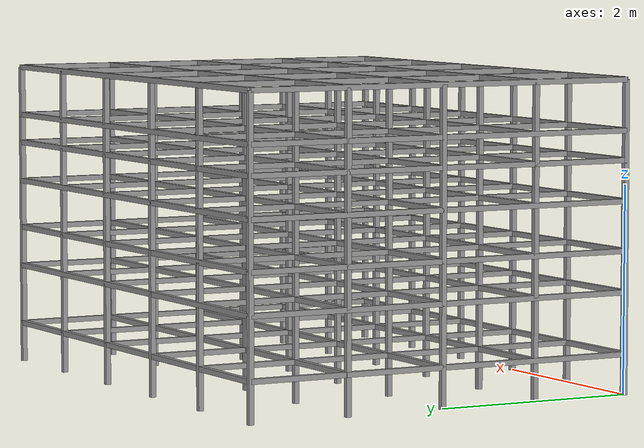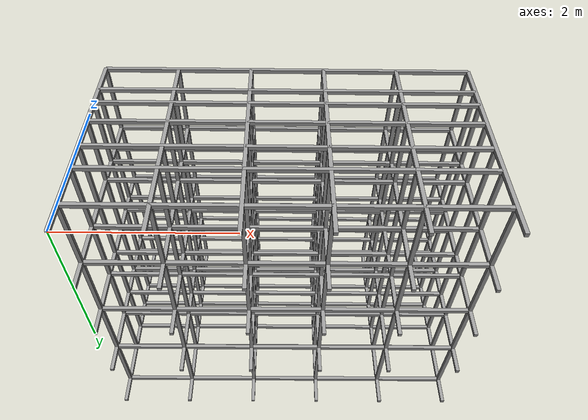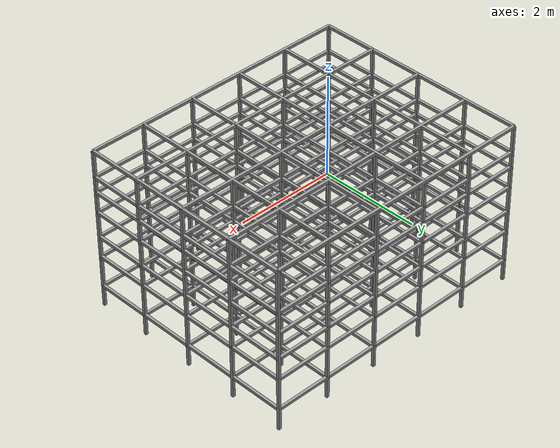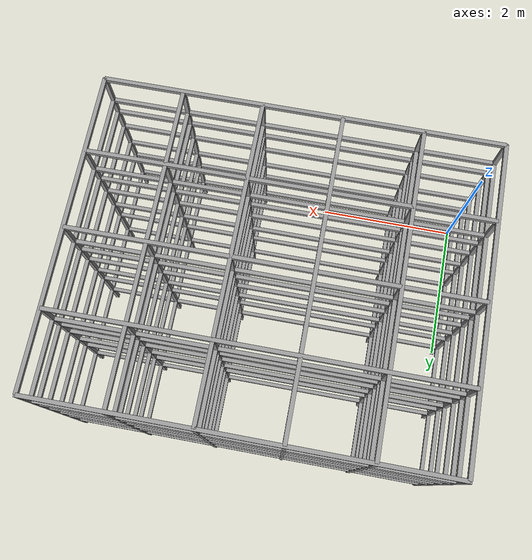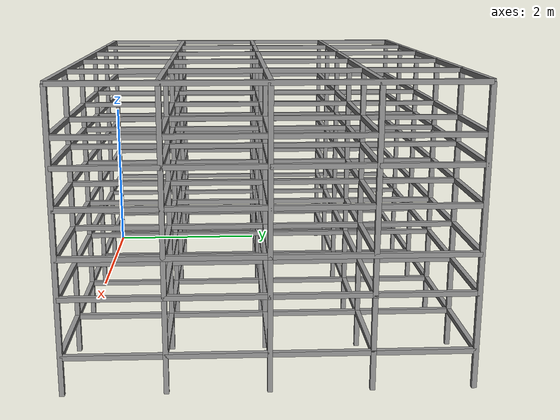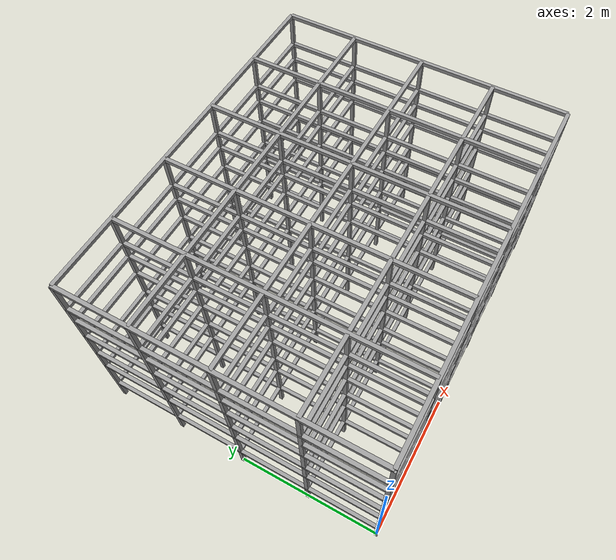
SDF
<?xml version="1.0" ?>
<sdf version="1.5">
  <model name="jgym">
    <static>true</static>
    <link name="link">

<collision name="jgymXY0collision">
<pose>0.000000 0.000000 1.500000 0.000000 0.000000 0.000000</pose>
<geometry> <box> <size>0.050000 0.050000 3.000000</size> </box> </geometry>
</collision>
<visual name="jgymXY0visual">
<pose>0.000000 0.000000 1.500000 0.000000 0.000000 0.000000</pose>
<geometry> <box> <size>0.050000 0.050000 3.000000</size> </box> </geometry>
<material> <script> <uri>file://media/materials/scripts/gazebo.material</uri>
<name>Gazebo/Grey</name> </script> </material>
</visual>

<collision name="jgymXY1collision">
<pose>0.000000 1.000000 1.500000 0.000000 0.000000 0.000000</pose>
<geometry> <box> <size>0.050000 0.050000 3.000000</size> </box> </geometry>
</collision>
<visual name="jgymXY1visual">
<pose>0.000000 1.000000 1.500000 0.000000 0.000000 0.000000</pose>
<geometry> <box> <size>0.050000 0.050000 3.000000</size> </box> </geometry>
<material> <script> <uri>file://media/materials/scripts/gazebo.material</uri>
<name>Gazebo/Grey</name> </script> </material>
</visual>

<collision name="jgymXY2collision">
<pose>0.000000 2.000000 1.500000 0.000000 0.000000 0.000000</pose>
<geometry> <box> <size>0.050000 0.050000 3.000000</size> </box> </geometry>
</collision>
<visual name="jgymXY2visual">
<pose>0.000000 2.000000 1.500000 0.000000 0.000000 0.000000</pose>
<geometry> <box> <size>0.050000 0.050000 3.000000</size> </box> </geometry>
<material> <script> <uri>file://media/materials/scripts/gazebo.material</uri>
<name>Gazebo/Grey</name> </script> </material>
</visual>

<collision name="jgymXY3collision">
<pose>0.000000 3.000000 1.500000 0.000000 0.000000 0.000000</pose>
<geometry> <box> <size>0.050000 0.050000 3.000000</size> </box> </geometry>
</collision>
<visual name="jgymXY3visual">
<pose>0.000000 3.000000 1.500000 0.000000 0.000000 0.000000</pose>
<geometry> <box> <size>0.050000 0.050000 3.000000</size> </box> </geometry>
<material> <script> <uri>file://media/materials/scripts/gazebo.material</uri>
<name>Gazebo/Grey</name> </script> </material>
</visual>

<collision name="jgymXY4collision">
<pose>0.000000 4.000000 1.500000 0.000000 0.000000 0.000000</pose>
<geometry> <box> <size>0.050000 0.050000 3.000000</size> </box> </geometry>
</collision>
<visual name="jgymXY4visual">
<pose>0.000000 4.000000 1.500000 0.000000 0.000000 0.000000</pose>
<geometry> <box> <size>0.050000 0.050000 3.000000</size> </box> </geometry>
<material> <script> <uri>file://media/materials/scripts/gazebo.material</uri>
<name>Gazebo/Grey</name> </script> </material>
</visual>

<collision name="jgymXY10collision">
<pose>1.000000 0.000000 1.500000 0.000000 0.000000 0.000000</pose>
<geometry> <box> <size>0.050000 0.050000 3.000000</size> </box> </geometry>
</collision>
<visual name="jgymXY10visual">
<pose>1.000000 0.000000 1.500000 0.000000 0.000000 0.000000</pose>
<geometry> <box> <size>0.050000 0.050000 3.000000</size> </box> </geometry>
<material> <script> <uri>file://media/materials/scripts/gazebo.material</uri>
<name>Gazebo/Grey</name> </script> </material>
</visual>

<collision name="jgymXY11collision">
<pose>1.000000 1.000000 1.500000 0.000000 0.000000 0.000000</pose>
<geometry> <box> <size>0.050000 0.050000 3.000000</size> </box> </geometry>
</collision>
<visual name="jgymXY11visual">
<pose>1.000000 1.000000 1.500000 0.000000 0.000000 0.000000</pose>
<geometry> <box> <size>0.050000 0.050000 3.000000</size> </box> </geometry>
<material> <script> <uri>file://media/materials/scripts/gazebo.material</uri>
<name>Gazebo/Grey</name> </script> </material>
</visual>

<collision name="jgymXY12collision">
<pose>1.000000 2.000000 1.500000 0.000000 0.000000 0.000000</pose>
<geometry> <box> <size>0.050000 0.050000 3.000000</size> </box> </geometry>
</collision>
<visual name="jgymXY12visual">
<pose>1.000000 2.000000 1.500000 0.000000 0.000000 0.000000</pose>
<geometry> <box> <size>0.050000 0.050000 3.000000</size> </box> </geometry>
<material> <script> <uri>file://media/materials/scripts/gazebo.material</uri>
<name>Gazebo/Grey</name> </script> </material>
</visual>

<collision name="jgymXY13collision">
<pose>1.000000 3.000000 1.500000 0.000000 0.000000 0.000000</pose>
<geometry> <box> <size>0.050000 0.050000 3.000000</size> </box> </geometry>
</collision>
<visual name="jgymXY13visual">
<pose>1.000000 3.000000 1.500000 0.000000 0.000000 0.000000</pose>
<geometry> <box> <size>0.050000 0.050000 3.000000</size> </box> </geometry>
<material> <script> <uri>file://media/materials/scripts/gazebo.material</uri>
<name>Gazebo/Grey</name> </script> </material>
</visual>

<collision name="jgymXY14collision">
<pose>1.000000 4.000000 1.500000 0.000000 0.000000 0.000000</pose>
<geometry> <box> <size>0.050000 0.050000 3.000000</size> </box> </geometry>
</collision>
<visual name="jgymXY14visual">
<pose>1.000000 4.000000 1.500000 0.000000 0.000000 0.000000</pose>
<geometry> <box> <size>0.050000 0.050000 3.000000</size> </box> </geometry>
<material> <script> <uri>file://media/materials/scripts/gazebo.material</uri>
<name>Gazebo/Grey</name> </script> </material>
</visual>

<collision name="jgymXY20collision">
<pose>2.000000 0.000000 1.500000 0.000000 0.000000 0.000000</pose>
<geometry> <box> <size>0.050000 0.050000 3.000000</size> </box> </geometry>
</collision>
<visual name="jgymXY20visual">
<pose>2.000000 0.000000 1.500000 0.000000 0.000000 0.000000</pose>
<geometry> <box> <size>0.050000 0.050000 3.000000</size> </box> </geometry>
<material> <script> <uri>file://media/materials/scripts/gazebo.material</uri>
<name>Gazebo/Grey</name> </script> </material>
</visual>

<collision name="jgymXY21collision">
<pose>2.000000 1.000000 1.500000 0.000000 0.000000 0.000000</pose>
<geometry> <box> <size>0.050000 0.050000 3.000000</size> </box> </geometry>
</collision>
<visual name="jgymXY21visual">
<pose>2.000000 1.000000 1.500000 0.000000 0.000000 0.000000</pose>
<geometry> <box> <size>0.050000 0.050000 3.000000</size> </box> </geometry>
<material> <script> <uri>file://media/materials/scripts/gazebo.material</uri>
<name>Gazebo/Grey</name> </script> </material>
</visual>

<collision name="jgymXY22collision">
<pose>2.000000 2.000000 1.500000 0.000000 0.000000 0.000000</pose>
<geometry> <box> <size>0.050000 0.050000 3.000000</size> </box> </geometry>
</collision>
<visual name="jgymXY22visual">
<pose>2.000000 2.000000 1.500000 0.000000 0.000000 0.000000</pose>
<geometry> <box> <size>0.050000 0.050000 3.000000</size> </box> </geometry>
<material> <script> <uri>file://media/materials/scripts/gazebo.material</uri>
<name>Gazebo/Grey</name> </script> </material>
</visual>

<collision name="jgymXY23collision">
<pose>2.000000 3.000000 1.500000 0.000000 0.000000 0.000000</pose>
<geometry> <box> <size>0.050000 0.050000 3.000000</size> </box> </geometry>
</collision>
<visual name="jgymXY23visual">
<pose>2.000000 3.000000 1.500000 0.000000 0.000000 0.000000</pose>
<geometry> <box> <size>0.050000 0.050000 3.000000</size> </box> </geometry>
<material> <script> <uri>file://media/materials/scripts/gazebo.material</uri>
<name>Gazebo/Grey</name> </script> </material>
</visual>

<collision name="jgymXY24collision">
<pose>2.000000 4.000000 1.500000 0.000000 0.000000 0.000000</pose>
<geometry> <box> <size>0.050000 0.050000 3.000000</size> </box> </geometry>
</collision>
<visual name="jgymXY24visual">
<pose>2.000000 4.000000 1.500000 0.000000 0.000000 0.000000</pose>
<geometry> <box> <size>0.050000 0.050000 3.000000</size> </box> </geometry>
<material> <script> <uri>file://media/materials/scripts/gazebo.material</uri>
<name>Gazebo/Grey</name> </script> </material>
</visual>

<collision name="jgymXY30collision">
<pose>3.000000 0.000000 1.500000 0.000000 0.000000 0.000000</pose>
<geometry> <box> <size>0.050000 0.050000 3.000000</size> </box> </geometry>
</collision>
<visual name="jgymXY30visual">
<pose>3.000000 0.000000 1.500000 0.000000 0.000000 0.000000</pose>
<geometry> <box> <size>0.050000 0.050000 3.000000</size> </box> </geometry>
<material> <script> <uri>file://media/materials/scripts/gazebo.material</uri>
<name>Gazebo/Grey</name> </script> </material>
</visual>

<collision name="jgymXY31collision">
<pose>3.000000 1.000000 1.500000 0.000000 0.000000 0.000000</pose>
<geometry> <box> <size>0.050000 0.050000 3.000000</size> </box> </geometry>
</collision>
<visual name="jgymXY31visual">
<pose>3.000000 1.000000 1.500000 0.000000 0.000000 0.000000</pose>
<geometry> <box> <size>0.050000 0.050000 3.000000</size> </box> </geometry>
<material> <script> <uri>file://media/materials/scripts/gazebo.material</uri>
<name>Gazebo/Grey</name> </script> </material>
</visual>

<collision name="jgymXY32collision">
<pose>3.000000 2.000000 1.500000 0.000000 0.000000 0.000000</pose>
<geometry> <box> <size>0.050000 0.050000 3.000000</size> </box> </geometry>
</collision>
<visual name="jgymXY32visual">
<pose>3.000000 2.000000 1.500000 0.000000 0.000000 0.000000</pose>
<geometry> <box> <size>0.050000 0.050000 3.000000</size> </box> </geometry>
<material> <script> <uri>file://media/materials/scripts/gazebo.material</uri>
<name>Gazebo/Grey</name> </script> </material>
</visual>

<collision name="jgymXY33collision">
<pose>3.000000 3.000000 1.500000 0.000000 0.000000 0.000000</pose>
<geometry> <box> <size>0.050000 0.050000 3.000000</size> </box> </geometry>
</collision>
<visual name="jgymXY33visual">
<pose>3.000000 3.000000 1.500000 0.000000 0.000000 0.000000</pose>
<geometry> <box> <size>0.050000 0.050000 3.000000</size> </box> </geometry>
<material> <script> <uri>file://media/materials/scripts/gazebo.material</uri>
<name>Gazebo/Grey</name> </script> </material>
</visual>

<collision name="jgymXY34collision">
<pose>3.000000 4.000000 1.500000 0.000000 0.000000 0.000000</pose>
<geometry> <box> <size>0.050000 0.050000 3.000000</size> </box> </geometry>
</collision>
<visual name="jgymXY34visual">
<pose>3.000000 4.000000 1.500000 0.000000 0.000000 0.000000</pose>
<geometry> <box> <size>0.050000 0.050000 3.000000</size> </box> </geometry>
<material> <script> <uri>file://media/materials/scripts/gazebo.material</uri>
<name>Gazebo/Grey</name> </script> </material>
</visual>

<collision name="jgymXY40collision">
<pose>4.000000 0.000000 1.500000 0.000000 0.000000 0.000000</pose>
<geometry> <box> <size>0.050000 0.050000 3.000000</size> </box> </geometry>
</collision>
<visual name="jgymXY40visual">
<pose>4.000000 0.000000 1.500000 0.000000 0.000000 0.000000</pose>
<geometry> <box> <size>0.050000 0.050000 3.000000</size> </box> </geometry>
<material> <script> <uri>file://media/materials/scripts/gazebo.material</uri>
<name>Gazebo/Grey</name> </script> </material>
</visual>

<collision name="jgymXY41collision">
<pose>4.000000 1.000000 1.500000 0.000000 0.000000 0.000000</pose>
<geometry> <box> <size>0.050000 0.050000 3.000000</size> </box> </geometry>
</collision>
<visual name="jgymXY41visual">
<pose>4.000000 1.000000 1.500000 0.000000 0.000000 0.000000</pose>
<geometry> <box> <size>0.050000 0.050000 3.000000</size> </box> </geometry>
<material> <script> <uri>file://media/materials/scripts/gazebo.material</uri>
<name>Gazebo/Grey</name> </script> </material>
</visual>

<collision name="jgymXY42collision">
<pose>4.000000 2.000000 1.500000 0.000000 0.000000 0.000000</pose>
<geometry> <box> <size>0.050000 0.050000 3.000000</size> </box> </geometry>
</collision>
<visual name="jgymXY42visual">
<pose>4.000000 2.000000 1.500000 0.000000 0.000000 0.000000</pose>
<geometry> <box> <size>0.050000 0.050000 3.000000</size> </box> </geometry>
<material> <script> <uri>file://media/materials/scripts/gazebo.material</uri>
<name>Gazebo/Grey</name> </script> </material>
</visual>

<collision name="jgymXY43collision">
<pose>4.000000 3.000000 1.500000 0.000000 0.000000 0.000000</pose>
<geometry> <box> <size>0.050000 0.050000 3.000000</size> </box> </geometry>
</collision>
<visual name="jgymXY43visual">
<pose>4.000000 3.000000 1.500000 0.000000 0.000000 0.000000</pose>
<geometry> <box> <size>0.050000 0.050000 3.000000</size> </box> </geometry>
<material> <script> <uri>file://media/materials/scripts/gazebo.material</uri>
<name>Gazebo/Grey</name> </script> </material>
</visual>

<collision name="jgymXY44collision">
<pose>4.000000 4.000000 1.500000 0.000000 0.000000 0.000000</pose>
<geometry> <box> <size>0.050000 0.050000 3.000000</size> </box> </geometry>
</collision>
<visual name="jgymXY44visual">
<pose>4.000000 4.000000 1.500000 0.000000 0.000000 0.000000</pose>
<geometry> <box> <size>0.050000 0.050000 3.000000</size> </box> </geometry>
<material> <script> <uri>file://media/materials/scripts/gazebo.material</uri>
<name>Gazebo/Grey</name> </script> </material>
</visual>

<collision name="jgymXY50collision">
<pose>5.000000 0.000000 1.500000 0.000000 0.000000 0.000000</pose>
<geometry> <box> <size>0.050000 0.050000 3.000000</size> </box> </geometry>
</collision>
<visual name="jgymXY50visual">
<pose>5.000000 0.000000 1.500000 0.000000 0.000000 0.000000</pose>
<geometry> <box> <size>0.050000 0.050000 3.000000</size> </box> </geometry>
<material> <script> <uri>file://media/materials/scripts/gazebo.material</uri>
<name>Gazebo/Grey</name> </script> </material>
</visual>

<collision name="jgymXY51collision">
<pose>5.000000 1.000000 1.500000 0.000000 0.000000 0.000000</pose>
<geometry> <box> <size>0.050000 0.050000 3.000000</size> </box> </geometry>
</collision>
<visual name="jgymXY51visual">
<pose>5.000000 1.000000 1.500000 0.000000 0.000000 0.000000</pose>
<geometry> <box> <size>0.050000 0.050000 3.000000</size> </box> </geometry>
<material> <script> <uri>file://media/materials/scripts/gazebo.material</uri>
<name>Gazebo/Grey</name> </script> </material>
</visual>

<collision name="jgymXY52collision">
<pose>5.000000 2.000000 1.500000 0.000000 0.000000 0.000000</pose>
<geometry> <box> <size>0.050000 0.050000 3.000000</size> </box> </geometry>
</collision>
<visual name="jgymXY52visual">
<pose>5.000000 2.000000 1.500000 0.000000 0.000000 0.000000</pose>
<geometry> <box> <size>0.050000 0.050000 3.000000</size> </box> </geometry>
<material> <script> <uri>file://media/materials/scripts/gazebo.material</uri>
<name>Gazebo/Grey</name> </script> </material>
</visual>

<collision name="jgymXY53collision">
<pose>5.000000 3.000000 1.500000 0.000000 0.000000 0.000000</pose>
<geometry> <box> <size>0.050000 0.050000 3.000000</size> </box> </geometry>
</collision>
<visual name="jgymXY53visual">
<pose>5.000000 3.000000 1.500000 0.000000 0.000000 0.000000</pose>
<geometry> <box> <size>0.050000 0.050000 3.000000</size> </box> </geometry>
<material> <script> <uri>file://media/materials/scripts/gazebo.material</uri>
<name>Gazebo/Grey</name> </script> </material>
</visual>

<collision name="jgymXY54collision">
<pose>5.000000 4.000000 1.500000 0.000000 0.000000 0.000000</pose>
<geometry> <box> <size>0.050000 0.050000 3.000000</size> </box> </geometry>
</collision>
<visual name="jgymXY54visual">
<pose>5.000000 4.000000 1.500000 0.000000 0.000000 0.000000</pose>
<geometry> <box> <size>0.050000 0.050000 3.000000</size> </box> </geometry>
<material> <script> <uri>file://media/materials/scripts/gazebo.material</uri>
<name>Gazebo/Grey</name> </script> </material>
</visual>

<collision name="jgymYZ10collision">
<pose>2.500000 0.000000 0.390964 0.000000 0.000000 0.000000</pose>
<geometry> <box> <size>5.000000 0.050000 0.050000</size> </box> </geometry>
</collision>
<visual name="jgymYZ10visual">
<pose>2.500000 0.000000 0.390964 0.000000 0.000000 0.000000</pose>
<geometry> <box> <size>5.000000 0.050000 0.050000</size> </box> </geometry>
<material> <script> <uri>file://media/materials/scripts/gazebo.material</uri>
<name>Gazebo/Grey</name> </script> </material>
</visual>

<collision name="jgymYZ11collision">
<pose>2.500000 1.000000 0.390964 0.000000 0.000000 0.000000</pose>
<geometry> <box> <size>5.000000 0.050000 0.050000</size> </box> </geometry>
</collision>
<visual name="jgymYZ11visual">
<pose>2.500000 1.000000 0.390964 0.000000 0.000000 0.000000</pose>
<geometry> <box> <size>5.000000 0.050000 0.050000</size> </box> </geometry>
<material> <script> <uri>file://media/materials/scripts/gazebo.material</uri>
<name>Gazebo/Grey</name> </script> </material>
</visual>

<collision name="jgymYZ12collision">
<pose>2.500000 2.000000 0.390964 0.000000 0.000000 0.000000</pose>
<geometry> <box> <size>5.000000 0.050000 0.050000</size> </box> </geometry>
</collision>
<visual name="jgymYZ12visual">
<pose>2.500000 2.000000 0.390964 0.000000 0.000000 0.000000</pose>
<geometry> <box> <size>5.000000 0.050000 0.050000</size> </box> </geometry>
<material> <script> <uri>file://media/materials/scripts/gazebo.material</uri>
<name>Gazebo/Grey</name> </script> </material>
</visual>

<collision name="jgymYZ13collision">
<pose>2.500000 3.000000 0.390964 0.000000 0.000000 0.000000</pose>
<geometry> <box> <size>5.000000 0.050000 0.050000</size> </box> </geometry>
</collision>
<visual name="jgymYZ13visual">
<pose>2.500000 3.000000 0.390964 0.000000 0.000000 0.000000</pose>
<geometry> <box> <size>5.000000 0.050000 0.050000</size> </box> </geometry>
<material> <script> <uri>file://media/materials/scripts/gazebo.material</uri>
<name>Gazebo/Grey</name> </script> </material>
</visual>

<collision name="jgymYZ14collision">
<pose>2.500000 4.000000 0.390964 0.000000 0.000000 0.000000</pose>
<geometry> <box> <size>5.000000 0.050000 0.050000</size> </box> </geometry>
</collision>
<visual name="jgymYZ14visual">
<pose>2.500000 4.000000 0.390964 0.000000 0.000000 0.000000</pose>
<geometry> <box> <size>5.000000 0.050000 0.050000</size> </box> </geometry>
<material> <script> <uri>file://media/materials/scripts/gazebo.material</uri>
<name>Gazebo/Grey</name> </script> </material>
</visual>

<collision name="jgymXZ10collision">
<pose>0.000000 2.000000 0.390964 0.000000 0.000000 0.000000</pose>
<geometry> <box> <size>0.050000 4.000000 0.050000</size> </box> </geometry>
</collision>
<visual name="jgymXZ10visual">
<pose>0.000000 2.000000 0.390964 0.000000 0.000000 0.000000</pose>
<geometry> <box> <size>0.050000 4.000000 0.050000</size> </box> </geometry>
<material> <script> <uri>file://media/materials/scripts/gazebo.material</uri>
<name>Gazebo/Grey</name> </script> </material>
</visual>

<collision name="jgymXZ11collision">
<pose>1.000000 2.000000 0.390964 0.000000 0.000000 0.000000</pose>
<geometry> <box> <size>0.050000 4.000000 0.050000</size> </box> </geometry>
</collision>
<visual name="jgymXZ11visual">
<pose>1.000000 2.000000 0.390964 0.000000 0.000000 0.000000</pose>
<geometry> <box> <size>0.050000 4.000000 0.050000</size> </box> </geometry>
<material> <script> <uri>file://media/materials/scripts/gazebo.material</uri>
<name>Gazebo/Grey</name> </script> </material>
</visual>

<collision name="jgymXZ12collision">
<pose>2.000000 2.000000 0.390964 0.000000 0.000000 0.000000</pose>
<geometry> <box> <size>0.050000 4.000000 0.050000</size> </box> </geometry>
</collision>
<visual name="jgymXZ12visual">
<pose>2.000000 2.000000 0.390964 0.000000 0.000000 0.000000</pose>
<geometry> <box> <size>0.050000 4.000000 0.050000</size> </box> </geometry>
<material> <script> <uri>file://media/materials/scripts/gazebo.material</uri>
<name>Gazebo/Grey</name> </script> </material>
</visual>

<collision name="jgymXZ13collision">
<pose>3.000000 2.000000 0.390964 0.000000 0.000000 0.000000</pose>
<geometry> <box> <size>0.050000 4.000000 0.050000</size> </box> </geometry>
</collision>
<visual name="jgymXZ13visual">
<pose>3.000000 2.000000 0.390964 0.000000 0.000000 0.000000</pose>
<geometry> <box> <size>0.050000 4.000000 0.050000</size> </box> </geometry>
<material> <script> <uri>file://media/materials/scripts/gazebo.material</uri>
<name>Gazebo/Grey</name> </script> </material>
</visual>

<collision name="jgymXZ14collision">
<pose>4.000000 2.000000 0.390964 0.000000 0.000000 0.000000</pose>
<geometry> <box> <size>0.050000 4.000000 0.050000</size> </box> </geometry>
</collision>
<visual name="jgymXZ14visual">
<pose>4.000000 2.000000 0.390964 0.000000 0.000000 0.000000</pose>
<geometry> <box> <size>0.050000 4.000000 0.050000</size> </box> </geometry>
<material> <script> <uri>file://media/materials/scripts/gazebo.material</uri>
<name>Gazebo/Grey</name> </script> </material>
</visual>

<collision name="jgymXZ15collision">
<pose>5.000000 2.000000 0.390964 0.000000 0.000000 0.000000</pose>
<geometry> <box> <size>0.050000 4.000000 0.050000</size> </box> </geometry>
</collision>
<visual name="jgymXZ15visual">
<pose>5.000000 2.000000 0.390964 0.000000 0.000000 0.000000</pose>
<geometry> <box> <size>0.050000 4.000000 0.050000</size> </box> </geometry>
<material> <script> <uri>file://media/materials/scripts/gazebo.material</uri>
<name>Gazebo/Grey</name> </script> </material>
</visual>

<collision name="jgymYZ20collision">
<pose>2.500000 0.000000 0.981214 0.000000 0.000000 0.000000</pose>
<geometry> <box> <size>5.000000 0.050000 0.050000</size> </box> </geometry>
</collision>
<visual name="jgymYZ20visual">
<pose>2.500000 0.000000 0.981214 0.000000 0.000000 0.000000</pose>
<geometry> <box> <size>5.000000 0.050000 0.050000</size> </box> </geometry>
<material> <script> <uri>file://media/materials/scripts/gazebo.material</uri>
<name>Gazebo/Grey</name> </script> </material>
</visual>

<collision name="jgymYZ21collision">
<pose>2.500000 1.000000 0.981214 0.000000 0.000000 0.000000</pose>
<geometry> <box> <size>5.000000 0.050000 0.050000</size> </box> </geometry>
</collision>
<visual name="jgymYZ21visual">
<pose>2.500000 1.000000 0.981214 0.000000 0.000000 0.000000</pose>
<geometry> <box> <size>5.000000 0.050000 0.050000</size> </box> </geometry>
<material> <script> <uri>file://media/materials/scripts/gazebo.material</uri>
<name>Gazebo/Grey</name> </script> </material>
</visual>

<collision name="jgymYZ22collision">
<pose>2.500000 2.000000 0.981214 0.000000 0.000000 0.000000</pose>
<geometry> <box> <size>5.000000 0.050000 0.050000</size> </box> </geometry>
</collision>
<visual name="jgymYZ22visual">
<pose>2.500000 2.000000 0.981214 0.000000 0.000000 0.000000</pose>
<geometry> <box> <size>5.000000 0.050000 0.050000</size> </box> </geometry>
<material> <script> <uri>file://media/materials/scripts/gazebo.material</uri>
<name>Gazebo/Grey</name> </script> </material>
</visual>

<collision name="jgymYZ23collision">
<pose>2.500000 3.000000 0.981214 0.000000 0.000000 0.000000</pose>
<geometry> <box> <size>5.000000 0.050000 0.050000</size> </box> </geometry>
</collision>
<visual name="jgymYZ23visual">
<pose>2.500000 3.000000 0.981214 0.000000 0.000000 0.000000</pose>
<geometry> <box> <size>5.000000 0.050000 0.050000</size> </box> </geometry>
<material> <script> <uri>file://media/materials/scripts/gazebo.material</uri>
<name>Gazebo/Grey</name> </script> </material>
</visual>

<collision name="jgymYZ24collision">
<pose>2.500000 4.000000 0.981214 0.000000 0.000000 0.000000</pose>
<geometry> <box> <size>5.000000 0.050000 0.050000</size> </box> </geometry>
</collision>
<visual name="jgymYZ24visual">
<pose>2.500000 4.000000 0.981214 0.000000 0.000000 0.000000</pose>
<geometry> <box> <size>5.000000 0.050000 0.050000</size> </box> </geometry>
<material> <script> <uri>file://media/materials/scripts/gazebo.material</uri>
<name>Gazebo/Grey</name> </script> </material>
</visual>

<collision name="jgymXZ20collision">
<pose>0.000000 2.000000 0.981214 0.000000 0.000000 0.000000</pose>
<geometry> <box> <size>0.050000 4.000000 0.050000</size> </box> </geometry>
</collision>
<visual name="jgymXZ20visual">
<pose>0.000000 2.000000 0.981214 0.000000 0.000000 0.000000</pose>
<geometry> <box> <size>0.050000 4.000000 0.050000</size> </box> </geometry>
<material> <script> <uri>file://media/materials/scripts/gazebo.material</uri>
<name>Gazebo/Grey</name> </script> </material>
</visual>

<collision name="jgymXZ21collision">
<pose>1.000000 2.000000 0.981214 0.000000 0.000000 0.000000</pose>
<geometry> <box> <size>0.050000 4.000000 0.050000</size> </box> </geometry>
</collision>
<visual name="jgymXZ21visual">
<pose>1.000000 2.000000 0.981214 0.000000 0.000000 0.000000</pose>
<geometry> <box> <size>0.050000 4.000000 0.050000</size> </box> </geometry>
<material> <script> <uri>file://media/materials/scripts/gazebo.material</uri>
<name>Gazebo/Grey</name> </script> </material>
</visual>

<collision name="jgymXZ22collision">
<pose>2.000000 2.000000 0.981214 0.000000 0.000000 0.000000</pose>
<geometry> <box> <size>0.050000 4.000000 0.050000</size> </box> </geometry>
</collision>
<visual name="jgymXZ22visual">
<pose>2.000000 2.000000 0.981214 0.000000 0.000000 0.000000</pose>
<geometry> <box> <size>0.050000 4.000000 0.050000</size> </box> </geometry>
<material> <script> <uri>file://media/materials/scripts/gazebo.material</uri>
<name>Gazebo/Grey</name> </script> </material>
</visual>

<collision name="jgymXZ23collision">
<pose>3.000000 2.000000 0.981214 0.000000 0.000000 0.000000</pose>
<geometry> <box> <size>0.050000 4.000000 0.050000</size> </box> </geometry>
</collision>
<visual name="jgymXZ23visual">
<pose>3.000000 2.000000 0.981214 0.000000 0.000000 0.000000</pose>
<geometry> <box> <size>0.050000 4.000000 0.050000</size> </box> </geometry>
<material> <script> <uri>file://media/materials/scripts/gazebo.material</uri>
<name>Gazebo/Grey</name> </script> </material>
</visual>

<collision name="jgymXZ24collision">
<pose>4.000000 2.000000 0.981214 0.000000 0.000000 0.000000</pose>
<geometry> <box> <size>0.050000 4.000000 0.050000</size> </box> </geometry>
</collision>
<visual name="jgymXZ24visual">
<pose>4.000000 2.000000 0.981214 0.000000 0.000000 0.000000</pose>
<geometry> <box> <size>0.050000 4.000000 0.050000</size> </box> </geometry>
<material> <script> <uri>file://media/materials/scripts/gazebo.material</uri>
<name>Gazebo/Grey</name> </script> </material>
</visual>

<collision name="jgymXZ25collision">
<pose>5.000000 2.000000 0.981214 0.000000 0.000000 0.000000</pose>
<geometry> <box> <size>0.050000 4.000000 0.050000</size> </box> </geometry>
</collision>
<visual name="jgymXZ25visual">
<pose>5.000000 2.000000 0.981214 0.000000 0.000000 0.000000</pose>
<geometry> <box> <size>0.050000 4.000000 0.050000</size> </box> </geometry>
<material> <script> <uri>file://media/materials/scripts/gazebo.material</uri>
<name>Gazebo/Grey</name> </script> </material>
</visual>

<collision name="jgymYZ30collision">
<pose>2.500000 0.000000 1.374750 0.000000 0.000000 0.000000</pose>
<geometry> <box> <size>5.000000 0.050000 0.050000</size> </box> </geometry>
</collision>
<visual name="jgymYZ30visual">
<pose>2.500000 0.000000 1.374750 0.000000 0.000000 0.000000</pose>
<geometry> <box> <size>5.000000 0.050000 0.050000</size> </box> </geometry>
<material> <script> <uri>file://media/materials/scripts/gazebo.material</uri>
<name>Gazebo/Grey</name> </script> </material>
</visual>

<collision name="jgymYZ31collision">
<pose>2.500000 1.000000 1.374750 0.000000 0.000000 0.000000</pose>
<geometry> <box> <size>5.000000 0.050000 0.050000</size> </box> </geometry>
</collision>
<visual name="jgymYZ31visual">
<pose>2.500000 1.000000 1.374750 0.000000 0.000000 0.000000</pose>
<geometry> <box> <size>5.000000 0.050000 0.050000</size> </box> </geometry>
<material> <script> <uri>file://media/materials/scripts/gazebo.material</uri>
<name>Gazebo/Grey</name> </script> </material>
</visual>

<collision name="jgymYZ32collision">
<pose>2.500000 2.000000 1.374750 0.000000 0.000000 0.000000</pose>
<geometry> <box> <size>5.000000 0.050000 0.050000</size> </box> </geometry>
</collision>
<visual name="jgymYZ32visual">
<pose>2.500000 2.000000 1.374750 0.000000 0.000000 0.000000</pose>
<geometry> <box> <size>5.000000 0.050000 0.050000</size> </box> </geometry>
<material> <script> <uri>file://media/materials/scripts/gazebo.material</uri>
<name>Gazebo/Grey</name> </script> </material>
</visual>

<collision name="jgymYZ33collision">
<pose>2.500000 3.000000 1.374750 0.000000 0.000000 0.000000</pose>
<geometry> <box> <size>5.000000 0.050000 0.050000</size> </box> </geometry>
</collision>
<visual name="jgymYZ33visual">
<pose>2.500000 3.000000 1.374750 0.000000 0.000000 0.000000</pose>
<geometry> <box> <size>5.000000 0.050000 0.050000</size> </box> </geometry>
<material> <script> <uri>file://media/materials/scripts/gazebo.material</uri>
<name>Gazebo/Grey</name> </script> </material>
</visual>

<collision name="jgymYZ34collision">
<pose>2.500000 4.000000 1.374750 0.000000 0.000000 0.000000</pose>
<geometry> <box> <size>5.000000 0.050000 0.050000</size> </box> </geometry>
</collision>
<visual name="jgymYZ34visual">
<pose>2.500000 4.000000 1.374750 0.000000 0.000000 0.000000</pose>
<geometry> <box> <size>5.000000 0.050000 0.050000</size> </box> </geometry>
<material> <script> <uri>file://media/materials/scripts/gazebo.material</uri>
<name>Gazebo/Grey</name> </script> </material>
</visual>

<collision name="jgymXZ30collision">
<pose>0.000000 2.000000 1.374750 0.000000 0.000000 0.000000</pose>
<geometry> <box> <size>0.050000 4.000000 0.050000</size> </box> </geometry>
</collision>
<visual name="jgymXZ30visual">
<pose>0.000000 2.000000 1.374750 0.000000 0.000000 0.000000</pose>
<geometry> <box> <size>0.050000 4.000000 0.050000</size> </box> </geometry>
<material> <script> <uri>file://media/materials/scripts/gazebo.material</uri>
<name>Gazebo/Grey</name> </script> </material>
</visual>

<collision name="jgymXZ31collision">
<pose>1.000000 2.000000 1.374750 0.000000 0.000000 0.000000</pose>
<geometry> <box> <size>0.050000 4.000000 0.050000</size> </box> </geometry>
</collision>
<visual name="jgymXZ31visual">
<pose>1.000000 2.000000 1.374750 0.000000 0.000000 0.000000</pose>
<geometry> <box> <size>0.050000 4.000000 0.050000</size> </box> </geometry>
<material> <script> <uri>file://media/materials/scripts/gazebo.material</uri>
<name>Gazebo/Grey</name> </script> </material>
</visual>

<collision name="jgymXZ32collision">
<pose>2.000000 2.000000 1.374750 0.000000 0.000000 0.000000</pose>
<geometry> <box> <size>0.050000 4.000000 0.050000</size> </box> </geometry>
</collision>
<visual name="jgymXZ32visual">
<pose>2.000000 2.000000 1.374750 0.000000 0.000000 0.000000</pose>
<geometry> <box> <size>0.050000 4.000000 0.050000</size> </box> </geometry>
<material> <script> <uri>file://media/materials/scripts/gazebo.material</uri>
<name>Gazebo/Grey</name> </script> </material>
</visual>

<collision name="jgymXZ33collision">
<pose>3.000000 2.000000 1.374750 0.000000 0.000000 0.000000</pose>
<geometry> <box> <size>0.050000 4.000000 0.050000</size> </box> </geometry>
</collision>
<visual name="jgymXZ33visual">
<pose>3.000000 2.000000 1.374750 0.000000 0.000000 0.000000</pose>
<geometry> <box> <size>0.050000 4.000000 0.050000</size> </box> </geometry>
<material> <script> <uri>file://media/materials/scripts/gazebo.material</uri>
<name>Gazebo/Grey</name> </script> </material>
</visual>

<collision name="jgymXZ34collision">
<pose>4.000000 2.000000 1.374750 0.000000 0.000000 0.000000</pose>
<geometry> <box> <size>0.050000 4.000000 0.050000</size> </box> </geometry>
</collision>
<visual name="jgymXZ34visual">
<pose>4.000000 2.000000 1.374750 0.000000 0.000000 0.000000</pose>
<geometry> <box> <size>0.050000 4.000000 0.050000</size> </box> </geometry>
<material> <script> <uri>file://media/materials/scripts/gazebo.material</uri>
<name>Gazebo/Grey</name> </script> </material>
</visual>

<collision name="jgymXZ35collision">
<pose>5.000000 2.000000 1.374750 0.000000 0.000000 0.000000</pose>
<geometry> <box> <size>0.050000 4.000000 0.050000</size> </box> </geometry>
</collision>
<visual name="jgymXZ35visual">
<pose>5.000000 2.000000 1.374750 0.000000 0.000000 0.000000</pose>
<geometry> <box> <size>0.050000 4.000000 0.050000</size> </box> </geometry>
<material> <script> <uri>file://media/materials/scripts/gazebo.material</uri>
<name>Gazebo/Grey</name> </script> </material>
</visual>

<collision name="jgymYZ40collision">
<pose>2.500000 0.000000 1.847679 0.000000 0.000000 0.000000</pose>
<geometry> <box> <size>5.000000 0.050000 0.050000</size> </box> </geometry>
</collision>
<visual name="jgymYZ40visual">
<pose>2.500000 0.000000 1.847679 0.000000 0.000000 0.000000</pose>
<geometry> <box> <size>5.000000 0.050000 0.050000</size> </box> </geometry>
<material> <script> <uri>file://media/materials/scripts/gazebo.material</uri>
<name>Gazebo/Grey</name> </script> </material>
</visual>

<collision name="jgymYZ41collision">
<pose>2.500000 1.000000 1.847679 0.000000 0.000000 0.000000</pose>
<geometry> <box> <size>5.000000 0.050000 0.050000</size> </box> </geometry>
</collision>
<visual name="jgymYZ41visual">
<pose>2.500000 1.000000 1.847679 0.000000 0.000000 0.000000</pose>
<geometry> <box> <size>5.000000 0.050000 0.050000</size> </box> </geometry>
<material> <script> <uri>file://media/materials/scripts/gazebo.material</uri>
<name>Gazebo/Grey</name> </script> </material>
</visual>

<collision name="jgymYZ42collision">
<pose>2.500000 2.000000 1.847679 0.000000 0.000000 0.000000</pose>
<geometry> <box> <size>5.000000 0.050000 0.050000</size> </box> </geometry>
</collision>
<visual name="jgymYZ42visual">
<pose>2.500000 2.000000 1.847679 0.000000 0.000000 0.000000</pose>
<geometry> <box> <size>5.000000 0.050000 0.050000</size> </box> </geometry>
<material> <script> <uri>file://media/materials/scripts/gazebo.material</uri>
<name>Gazebo/Grey</name> </script> </material>
</visual>

<collision name="jgymYZ43collision">
<pose>2.500000 3.000000 1.847679 0.000000 0.000000 0.000000</pose>
<geometry> <box> <size>5.000000 0.050000 0.050000</size> </box> </geometry>
</collision>
<visual name="jgymYZ43visual">
<pose>2.500000 3.000000 1.847679 0.000000 0.000000 0.000000</pose>
<geometry> <box> <size>5.000000 0.050000 0.050000</size> </box> </geometry>
<material> <script> <uri>file://media/materials/scripts/gazebo.material</uri>
<name>Gazebo/Grey</name> </script> </material>
</visual>

<collision name="jgymYZ44collision">
<pose>2.500000 4.000000 1.847679 0.000000 0.000000 0.000000</pose>
<geometry> <box> <size>5.000000 0.050000 0.050000</size> </box> </geometry>
</collision>
<visual name="jgymYZ44visual">
<pose>2.500000 4.000000 1.847679 0.000000 0.000000 0.000000</pose>
<geometry> <box> <size>5.000000 0.050000 0.050000</size> </box> </geometry>
<material> <script> <uri>file://media/materials/scripts/gazebo.material</uri>
<name>Gazebo/Grey</name> </script> </material>
</visual>

<collision name="jgymXZ40collision">
<pose>0.000000 2.000000 1.847679 0.000000 0.000000 0.000000</pose>
<geometry> <box> <size>0.050000 4.000000 0.050000</size> </box> </geometry>
</collision>
<visual name="jgymXZ40visual">
<pose>0.000000 2.000000 1.847679 0.000000 0.000000 0.000000</pose>
<geometry> <box> <size>0.050000 4.000000 0.050000</size> </box> </geometry>
<material> <script> <uri>file://media/materials/scripts/gazebo.material</uri>
<name>Gazebo/Grey</name> </script> </material>
</visual>

<collision name="jgymXZ41collision">
<pose>1.000000 2.000000 1.847679 0.000000 0.000000 0.000000</pose>
<geometry> <box> <size>0.050000 4.000000 0.050000</size> </box> </geometry>
</collision>
<visual name="jgymXZ41visual">
<pose>1.000000 2.000000 1.847679 0.000000 0.000000 0.000000</pose>
<geometry> <box> <size>0.050000 4.000000 0.050000</size> </box> </geometry>
<material> <script> <uri>file://media/materials/scripts/gazebo.material</uri>
<name>Gazebo/Grey</name> </script> </material>
</visual>

<collision name="jgymXZ42collision">
<pose>2.000000 2.000000 1.847679 0.000000 0.000000 0.000000</pose>
<geometry> <box> <size>0.050000 4.000000 0.050000</size> </box> </geometry>
</collision>
<visual name="jgymXZ42visual">
<pose>2.000000 2.000000 1.847679 0.000000 0.000000 0.000000</pose>
<geometry> <box> <size>0.050000 4.000000 0.050000</size> </box> </geometry>
<material> <script> <uri>file://media/materials/scripts/gazebo.material</uri>
<name>Gazebo/Grey</name> </script> </material>
</visual>

<collision name="jgymXZ43collision">
<pose>3.000000 2.000000 1.847679 0.000000 0.000000 0.000000</pose>
<geometry> <box> <size>0.050000 4.000000 0.050000</size> </box> </geometry>
</collision>
<visual name="jgymXZ43visual">
<pose>3.000000 2.000000 1.847679 0.000000 0.000000 0.000000</pose>
<geometry> <box> <size>0.050000 4.000000 0.050000</size> </box> </geometry>
<material> <script> <uri>file://media/materials/scripts/gazebo.material</uri>
<name>Gazebo/Grey</name> </script> </material>
</visual>

<collision name="jgymXZ44collision">
<pose>4.000000 2.000000 1.847679 0.000000 0.000000 0.000000</pose>
<geometry> <box> <size>0.050000 4.000000 0.050000</size> </box> </geometry>
</collision>
<visual name="jgymXZ44visual">
<pose>4.000000 2.000000 1.847679 0.000000 0.000000 0.000000</pose>
<geometry> <box> <size>0.050000 4.000000 0.050000</size> </box> </geometry>
<material> <script> <uri>file://media/materials/scripts/gazebo.material</uri>
<name>Gazebo/Grey</name> </script> </material>
</visual>

<collision name="jgymXZ45collision">
<pose>5.000000 2.000000 1.847679 0.000000 0.000000 0.000000</pose>
<geometry> <box> <size>0.050000 4.000000 0.050000</size> </box> </geometry>
</collision>
<visual name="jgymXZ45visual">
<pose>5.000000 2.000000 1.847679 0.000000 0.000000 0.000000</pose>
<geometry> <box> <size>0.050000 4.000000 0.050000</size> </box> </geometry>
<material> <script> <uri>file://media/materials/scripts/gazebo.material</uri>
<name>Gazebo/Grey</name> </script> </material>
</visual>

<collision name="jgymYZ50collision">
<pose>2.500000 0.000000 2.237036 0.000000 0.000000 0.000000</pose>
<geometry> <box> <size>5.000000 0.050000 0.050000</size> </box> </geometry>
</collision>
<visual name="jgymYZ50visual">
<pose>2.500000 0.000000 2.237036 0.000000 0.000000 0.000000</pose>
<geometry> <box> <size>5.000000 0.050000 0.050000</size> </box> </geometry>
<material> <script> <uri>file://media/materials/scripts/gazebo.material</uri>
<name>Gazebo/Grey</name> </script> </material>
</visual>

<collision name="jgymYZ51collision">
<pose>2.500000 1.000000 2.237036 0.000000 0.000000 0.000000</pose>
<geometry> <box> <size>5.000000 0.050000 0.050000</size> </box> </geometry>
</collision>
<visual name="jgymYZ51visual">
<pose>2.500000 1.000000 2.237036 0.000000 0.000000 0.000000</pose>
<geometry> <box> <size>5.000000 0.050000 0.050000</size> </box> </geometry>
<material> <script> <uri>file://media/materials/scripts/gazebo.material</uri>
<name>Gazebo/Grey</name> </script> </material>
</visual>

<collision name="jgymYZ52collision">
<pose>2.500000 2.000000 2.237036 0.000000 0.000000 0.000000</pose>
<geometry> <box> <size>5.000000 0.050000 0.050000</size> </box> </geometry>
</collision>
<visual name="jgymYZ52visual">
<pose>2.500000 2.000000 2.237036 0.000000 0.000000 0.000000</pose>
<geometry> <box> <size>5.000000 0.050000 0.050000</size> </box> </geometry>
<material> <script> <uri>file://media/materials/scripts/gazebo.material</uri>
<name>Gazebo/Grey</name> </script> </material>
</visual>

<collision name="jgymYZ53collision">
<pose>2.500000 3.000000 2.237036 0.000000 0.000000 0.000000</pose>
<geometry> <box> <size>5.000000 0.050000 0.050000</size> </box> </geometry>
</collision>
<visual name="jgymYZ53visual">
<pose>2.500000 3.000000 2.237036 0.000000 0.000000 0.000000</pose>
<geometry> <box> <size>5.000000 0.050000 0.050000</size> </box> </geometry>
<material> <script> <uri>file://media/materials/scripts/gazebo.material</uri>
<name>Gazebo/Grey</name> </script> </material>
</visual>

<collision name="jgymYZ54collision">
<pose>2.500000 4.000000 2.237036 0.000000 0.000000 0.000000</pose>
<geometry> <box> <size>5.000000 0.050000 0.050000</size> </box> </geometry>
</collision>
<visual name="jgymYZ54visual">
<pose>2.500000 4.000000 2.237036 0.000000 0.000000 0.000000</pose>
<geometry> <box> <size>5.000000 0.050000 0.050000</size> </box> </geometry>
<material> <script> <uri>file://media/materials/scripts/gazebo.material</uri>
<name>Gazebo/Grey</name> </script> </material>
</visual>

<collision name="jgymXZ50collision">
<pose>0.000000 2.000000 2.237036 0.000000 0.000000 0.000000</pose>
<geometry> <box> <size>0.050000 4.000000 0.050000</size> </box> </geometry>
</collision>
<visual name="jgymXZ50visual">
<pose>0.000000 2.000000 2.237036 0.000000 0.000000 0.000000</pose>
<geometry> <box> <size>0.050000 4.000000 0.050000</size> </box> </geometry>
<material> <script> <uri>file://media/materials/scripts/gazebo.material</uri>
<name>Gazebo/Grey</name> </script> </material>
</visual>

<collision name="jgymXZ51collision">
<pose>1.000000 2.000000 2.237036 0.000000 0.000000 0.000000</pose>
<geometry> <box> <size>0.050000 4.000000 0.050000</size> </box> </geometry>
</collision>
<visual name="jgymXZ51visual">
<pose>1.000000 2.000000 2.237036 0.000000 0.000000 0.000000</pose>
<geometry> <box> <size>0.050000 4.000000 0.050000</size> </box> </geometry>
<material> <script> <uri>file://media/materials/scripts/gazebo.material</uri>
<name>Gazebo/Grey</name> </script> </material>
</visual>

<collision name="jgymXZ52collision">
<pose>2.000000 2.000000 2.237036 0.000000 0.000000 0.000000</pose>
<geometry> <box> <size>0.050000 4.000000 0.050000</size> </box> </geometry>
</collision>
<visual name="jgymXZ52visual">
<pose>2.000000 2.000000 2.237036 0.000000 0.000000 0.000000</pose>
<geometry> <box> <size>0.050000 4.000000 0.050000</size> </box> </geometry>
<material> <script> <uri>file://media/materials/scripts/gazebo.material</uri>
<name>Gazebo/Grey</name> </script> </material>
</visual>

<collision name="jgymXZ53collision">
<pose>3.000000 2.000000 2.237036 0.000000 0.000000 0.000000</pose>
<geometry> <box> <size>0.050000 4.000000 0.050000</size> </box> </geometry>
</collision>
<visual name="jgymXZ53visual">
<pose>3.000000 2.000000 2.237036 0.000000 0.000000 0.000000</pose>
<geometry> <box> <size>0.050000 4.000000 0.050000</size> </box> </geometry>
<material> <script> <uri>file://media/materials/scripts/gazebo.material</uri>
<name>Gazebo/Grey</name> </script> </material>
</visual>

<collision name="jgymXZ54collision">
<pose>4.000000 2.000000 2.237036 0.000000 0.000000 0.000000</pose>
<geometry> <box> <size>0.050000 4.000000 0.050000</size> </box> </geometry>
</collision>
<visual name="jgymXZ54visual">
<pose>4.000000 2.000000 2.237036 0.000000 0.000000 0.000000</pose>
<geometry> <box> <size>0.050000 4.000000 0.050000</size> </box> </geometry>
<material> <script> <uri>file://media/materials/scripts/gazebo.material</uri>
<name>Gazebo/Grey</name> </script> </material>
</visual>

<collision name="jgymXZ55collision">
<pose>5.000000 2.000000 2.237036 0.000000 0.000000 0.000000</pose>
<geometry> <box> <size>0.050000 4.000000 0.050000</size> </box> </geometry>
</collision>
<visual name="jgymXZ55visual">
<pose>5.000000 2.000000 2.237036 0.000000 0.000000 0.000000</pose>
<geometry> <box> <size>0.050000 4.000000 0.050000</size> </box> </geometry>
<material> <script> <uri>file://media/materials/scripts/gazebo.material</uri>
<name>Gazebo/Grey</name> </script> </material>
</visual>

<collision name="jgymYZ60collision">
<pose>2.500000 0.000000 2.518393 0.000000 0.000000 0.000000</pose>
<geometry> <box> <size>5.000000 0.050000 0.050000</size> </box> </geometry>
</collision>
<visual name="jgymYZ60visual">
<pose>2.500000 0.000000 2.518393 0.000000 0.000000 0.000000</pose>
<geometry> <box> <size>5.000000 0.050000 0.050000</size> </box> </geometry>
<material> <script> <uri>file://media/materials/scripts/gazebo.material</uri>
<name>Gazebo/Grey</name> </script> </material>
</visual>

<collision name="jgymYZ61collision">
<pose>2.500000 1.000000 2.518393 0.000000 0.000000 0.000000</pose>
<geometry> <box> <size>5.000000 0.050000 0.050000</size> </box> </geometry>
</collision>
<visual name="jgymYZ61visual">
<pose>2.500000 1.000000 2.518393 0.000000 0.000000 0.000000</pose>
<geometry> <box> <size>5.000000 0.050000 0.050000</size> </box> </geometry>
<material> <script> <uri>file://media/materials/scripts/gazebo.material</uri>
<name>Gazebo/Grey</name> </script> </material>
</visual>

<collision name="jgymYZ62collision">
<pose>2.500000 2.000000 2.518393 0.000000 0.000000 0.000000</pose>
<geometry> <box> <size>5.000000 0.050000 0.050000</size> </box> </geometry>
</collision>
<visual name="jgymYZ62visual">
<pose>2.500000 2.000000 2.518393 0.000000 0.000000 0.000000</pose>
<geometry> <box> <size>5.000000 0.050000 0.050000</size> </box> </geometry>
<material> <script> <uri>file://media/materials/scripts/gazebo.material</uri>
<name>Gazebo/Grey</name> </script> </material>
</visual>

<collision name="jgymYZ63collision">
<pose>2.500000 3.000000 2.518393 0.000000 0.000000 0.000000</pose>
<geometry> <box> <size>5.000000 0.050000 0.050000</size> </box> </geometry>
</collision>
<visual name="jgymYZ63visual">
<pose>2.500000 3.000000 2.518393 0.000000 0.000000 0.000000</pose>
<geometry> <box> <size>5.000000 0.050000 0.050000</size> </box> </geometry>
<material> <script> <uri>file://media/materials/scripts/gazebo.material</uri>
<name>Gazebo/Grey</name> </script> </material>
</visual>

<collision name="jgymYZ64collision">
<pose>2.500000 4.000000 2.518393 0.000000 0.000000 0.000000</pose>
<geometry> <box> <size>5.000000 0.050000 0.050000</size> </box> </geometry>
</collision>
<visual name="jgymYZ64visual">
<pose>2.500000 4.000000 2.518393 0.000000 0.000000 0.000000</pose>
<geometry> <box> <size>5.000000 0.050000 0.050000</size> </box> </geometry>
<material> <script> <uri>file://media/materials/scripts/gazebo.material</uri>
<name>Gazebo/Grey</name> </script> </material>
</visual>

<collision name="jgymXZ60collision">
<pose>0.000000 2.000000 2.518393 0.000000 0.000000 0.000000</pose>
<geometry> <box> <size>0.050000 4.000000 0.050000</size> </box> </geometry>
</collision>
<visual name="jgymXZ60visual">
<pose>0.000000 2.000000 2.518393 0.000000 0.000000 0.000000</pose>
<geometry> <box> <size>0.050000 4.000000 0.050000</size> </box> </geometry>
<material> <script> <uri>file://media/materials/scripts/gazebo.material</uri>
<name>Gazebo/Grey</name> </script> </material>
</visual>

<collision name="jgymXZ61collision">
<pose>1.000000 2.000000 2.518393 0.000000 0.000000 0.000000</pose>
<geometry> <box> <size>0.050000 4.000000 0.050000</size> </box> </geometry>
</collision>
<visual name="jgymXZ61visual">
<pose>1.000000 2.000000 2.518393 0.000000 0.000000 0.000000</pose>
<geometry> <box> <size>0.050000 4.000000 0.050000</size> </box> </geometry>
<material> <script> <uri>file://media/materials/scripts/gazebo.material</uri>
<name>Gazebo/Grey</name> </script> </material>
</visual>

<collision name="jgymXZ62collision">
<pose>2.000000 2.000000 2.518393 0.000000 0.000000 0.000000</pose>
<geometry> <box> <size>0.050000 4.000000 0.050000</size> </box> </geometry>
</collision>
<visual name="jgymXZ62visual">
<pose>2.000000 2.000000 2.518393 0.000000 0.000000 0.000000</pose>
<geometry> <box> <size>0.050000 4.000000 0.050000</size> </box> </geometry>
<material> <script> <uri>file://media/materials/scripts/gazebo.material</uri>
<name>Gazebo/Grey</name> </script> </material>
</visual>

<collision name="jgymXZ63collision">
<pose>3.000000 2.000000 2.518393 0.000000 0.000000 0.000000</pose>
<geometry> <box> <size>0.050000 4.000000 0.050000</size> </box> </geometry>
</collision>
<visual name="jgymXZ63visual">
<pose>3.000000 2.000000 2.518393 0.000000 0.000000 0.000000</pose>
<geometry> <box> <size>0.050000 4.000000 0.050000</size> </box> </geometry>
<material> <script> <uri>file://media/materials/scripts/gazebo.material</uri>
<name>Gazebo/Grey</name> </script> </material>
</visual>

<collision name="jgymXZ64collision">
<pose>4.000000 2.000000 2.518393 0.000000 0.000000 0.000000</pose>
<geometry> <box> <size>0.050000 4.000000 0.050000</size> </box> </geometry>
</collision>
<visual name="jgymXZ64visual">
<pose>4.000000 2.000000 2.518393 0.000000 0.000000 0.000000</pose>
<geometry> <box> <size>0.050000 4.000000 0.050000</size> </box> </geometry>
<material> <script> <uri>file://media/materials/scripts/gazebo.material</uri>
<name>Gazebo/Grey</name> </script> </material>
</visual>

<collision name="jgymXZ65collision">
<pose>5.000000 2.000000 2.518393 0.000000 0.000000 0.000000</pose>
<geometry> <box> <size>0.050000 4.000000 0.050000</size> </box> </geometry>
</collision>
<visual name="jgymXZ65visual">
<pose>5.000000 2.000000 2.518393 0.000000 0.000000 0.000000</pose>
<geometry> <box> <size>0.050000 4.000000 0.050000</size> </box> </geometry>
<material> <script> <uri>file://media/materials/scripts/gazebo.material</uri>
<name>Gazebo/Grey</name> </script> </material>
</visual>

<collision name="jgymYZ90collision">
<pose>2.500000 0.000000 3.000000 0.000000 0.000000 0.000000</pose>
<geometry> <box> <size>5.000000 0.050000 0.050000</size> </box> </geometry>
</collision>
<visual name="jgymYZ90visual">
<pose>2.500000 0.000000 3.000000 0.000000 0.000000 0.000000</pose>
<geometry> <box> <size>5.000000 0.050000 0.050000</size> </box> </geometry>
<material> <script> <uri>file://media/materials/scripts/gazebo.material</uri>
<name>Gazebo/Grey</name> </script> </material>
</visual>

<collision name="jgymYZ91collision">
<pose>2.500000 1.000000 3.000000 0.000000 0.000000 0.000000</pose>
<geometry> <box> <size>5.000000 0.050000 0.050000</size> </box> </geometry>
</collision>
<visual name="jgymYZ91visual">
<pose>2.500000 1.000000 3.000000 0.000000 0.000000 0.000000</pose>
<geometry> <box> <size>5.000000 0.050000 0.050000</size> </box> </geometry>
<material> <script> <uri>file://media/materials/scripts/gazebo.material</uri>
<name>Gazebo/Grey</name> </script> </material>
</visual>

<collision name="jgymYZ92collision">
<pose>2.500000 2.000000 3.000000 0.000000 0.000000 0.000000</pose>
<geometry> <box> <size>5.000000 0.050000 0.050000</size> </box> </geometry>
</collision>
<visual name="jgymYZ92visual">
<pose>2.500000 2.000000 3.000000 0.000000 0.000000 0.000000</pose>
<geometry> <box> <size>5.000000 0.050000 0.050000</size> </box> </geometry>
<material> <script> <uri>file://media/materials/scripts/gazebo.material</uri>
<name>Gazebo/Grey</name> </script> </material>
</visual>

<collision name="jgymYZ93collision">
<pose>2.500000 3.000000 3.000000 0.000000 0.000000 0.000000</pose>
<geometry> <box> <size>5.000000 0.050000 0.050000</size> </box> </geometry>
</collision>
<visual name="jgymYZ93visual">
<pose>2.500000 3.000000 3.000000 0.000000 0.000000 0.000000</pose>
<geometry> <box> <size>5.000000 0.050000 0.050000</size> </box> </geometry>
<material> <script> <uri>file://media/materials/scripts/gazebo.material</uri>
<name>Gazebo/Grey</name> </script> </material>
</visual>

<collision name="jgymYZ94collision">
<pose>2.500000 4.000000 3.000000 0.000000 0.000000 0.000000</pose>
<geometry> <box> <size>5.000000 0.050000 0.050000</size> </box> </geometry>
</collision>
<visual name="jgymYZ94visual">
<pose>2.500000 4.000000 3.000000 0.000000 0.000000 0.000000</pose>
<geometry> <box> <size>5.000000 0.050000 0.050000</size> </box> </geometry>
<material> <script> <uri>file://media/materials/scripts/gazebo.material</uri>
<name>Gazebo/Grey</name> </script> </material>
</visual>

<collision name="jgymXZ90collision">
<pose>0.000000 2.000000 3.000000 0.000000 0.000000 0.000000</pose>
<geometry> <box> <size>0.050000 4.000000 0.050000</size> </box> </geometry>
</collision>
<visual name="jgymXZ90visual">
<pose>0.000000 2.000000 3.000000 0.000000 0.000000 0.000000</pose>
<geometry> <box> <size>0.050000 4.000000 0.050000</size> </box> </geometry>
<material> <script> <uri>file://media/materials/scripts/gazebo.material</uri>
<name>Gazebo/Grey</name> </script> </material>
</visual>

<collision name="jgymXZ91collision">
<pose>1.000000 2.000000 3.000000 0.000000 0.000000 0.000000</pose>
<geometry> <box> <size>0.050000 4.000000 0.050000</size> </box> </geometry>
</collision>
<visual name="jgymXZ91visual">
<pose>1.000000 2.000000 3.000000 0.000000 0.000000 0.000000</pose>
<geometry> <box> <size>0.050000 4.000000 0.050000</size> </box> </geometry>
<material> <script> <uri>file://media/materials/scripts/gazebo.material</uri>
<name>Gazebo/Grey</name> </script> </material>
</visual>

<collision name="jgymXZ92collision">
<pose>2.000000 2.000000 3.000000 0.000000 0.000000 0.000000</pose>
<geometry> <box> <size>0.050000 4.000000 0.050000</size> </box> </geometry>
</collision>
<visual name="jgymXZ92visual">
<pose>2.000000 2.000000 3.000000 0.000000 0.000000 0.000000</pose>
<geometry> <box> <size>0.050000 4.000000 0.050000</size> </box> </geometry>
<material> <script> <uri>file://media/materials/scripts/gazebo.material</uri>
<name>Gazebo/Grey</name> </script> </material>
</visual>

<collision name="jgymXZ93collision">
<pose>3.000000 2.000000 3.000000 0.000000 0.000000 0.000000</pose>
<geometry> <box> <size>0.050000 4.000000 0.050000</size> </box> </geometry>
</collision>
<visual name="jgymXZ93visual">
<pose>3.000000 2.000000 3.000000 0.000000 0.000000 0.000000</pose>
<geometry> <box> <size>0.050000 4.000000 0.050000</size> </box> </geometry>
<material> <script> <uri>file://media/materials/scripts/gazebo.material</uri>
<name>Gazebo/Grey</name> </script> </material>
</visual>

<collision name="jgymXZ94collision">
<pose>4.000000 2.000000 3.000000 0.000000 0.000000 0.000000</pose>
<geometry> <box> <size>0.050000 4.000000 0.050000</size> </box> </geometry>
</collision>
<visual name="jgymXZ94visual">
<pose>4.000000 2.000000 3.000000 0.000000 0.000000 0.000000</pose>
<geometry> <box> <size>0.050000 4.000000 0.050000</size> </box> </geometry>
<material> <script> <uri>file://media/materials/scripts/gazebo.material</uri>
<name>Gazebo/Grey</name> </script> </material>
</visual>

<collision name="jgymXZ95collision">
<pose>5.000000 2.000000 3.000000 0.000000 0.000000 0.000000</pose>
<geometry> <box> <size>0.050000 4.000000 0.050000</size> </box> </geometry>
</collision>
<visual name="jgymXZ95visual">
<pose>5.000000 2.000000 3.000000 0.000000 0.000000 0.000000</pose>
<geometry> <box> <size>0.050000 4.000000 0.050000</size> </box> </geometry>
<material> <script> <uri>file://media/materials/scripts/gazebo.material</uri>
<name>Gazebo/Grey</name> </script> </material>
</visual>

    </link>
  </model>
</sdf>
